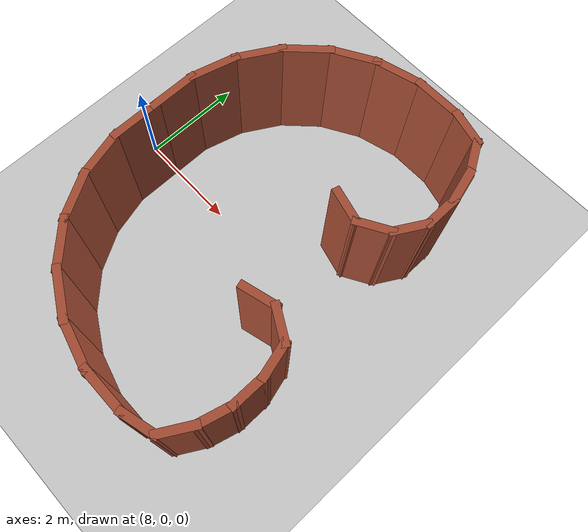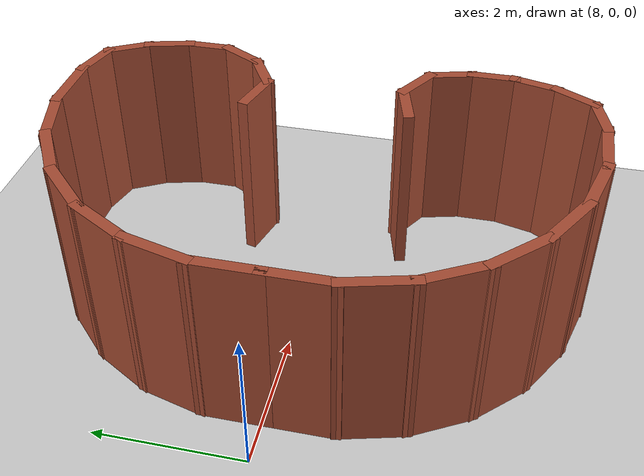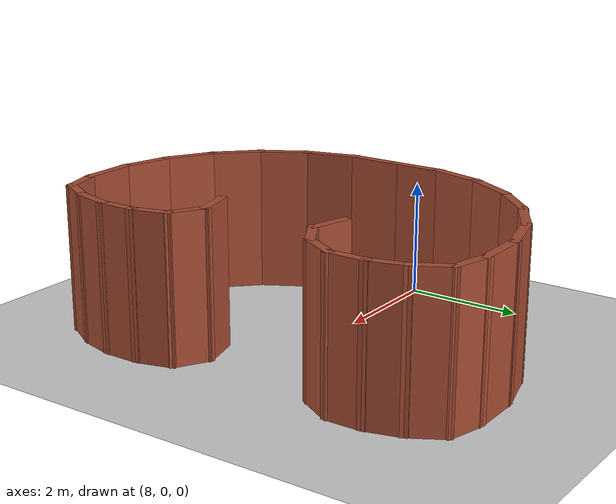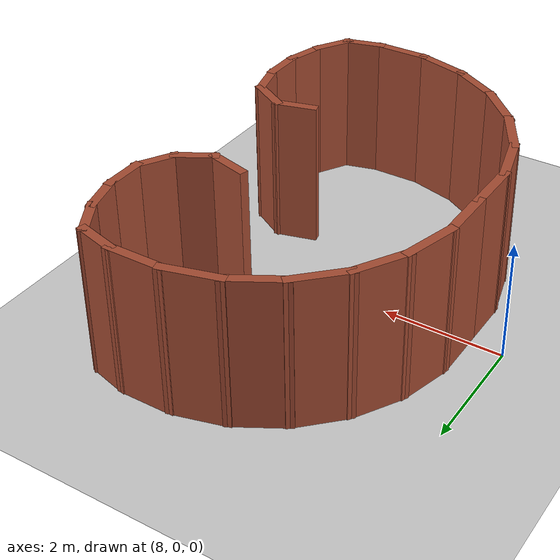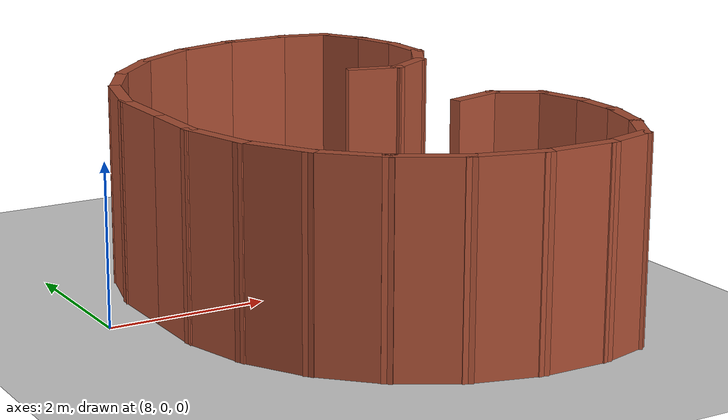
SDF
<sdf version="1.6">
 <world name="default">
  <light name="sun" type="directional">
   <pose>0 0 10 0 -0 0</pose>
   <diffuse>0.8 0.8 0.8 1</diffuse>
   <specular>0.2 0.2 0.2 1</specular>
   <attenuation>
    <range>1000</range>
    <constant>0.9</constant>
    <linear>0.01</linear>
    <quadratic>0.001</quadratic>
   </attenuation>
   <direction>-0.5 0.1 -0.9</direction>
  </light>
  <model name="ground_plane">
   <static>1</static>
   <link name="link">
    <collision name="collision">
     <geometry><plane><normal>0 0 1</normal><size>100 100</size></plane></geometry>
     <surface><friction><ode><mu>100</mu><mu2>50</mu2></ode></friction></surface>
    </collision>
    <visual name="visual">
     <cast_shadows>0</cast_shadows>
     <geometry><plane><normal>0 0 1</normal><size>100 100</size></plane></geometry>
     <material>
      <script><uri>file://media/materials/scripts/gazebo.material</uri><name>Gazebo/Grey</name></script>
     </material>
    </visual>
   </link>
  </model>
  <gravity>0 0 -9.8</gravity>
  <magnetic_field>6e-06 2.3e-05 -4.2e-05</magnetic_field>
  <atmosphere type="adiabatic"/>
  <physics name="default_physics" default="0" type="ode">
   <max_step_size>0.001</max_step_size>
   <real_time_factor>1</real_time_factor>
   <real_time_update_rate>1000</real_time_update_rate>
  </physics>
  <scene><ambient>0.4 0.4 0.4 1</ambient><background>0.7 0.7 0.7 1</background><shadows>1</shadows></scene>
  <audio><device>default</device></audio>
  <spherical_coordinates>
   <surface_model>EARTH_WGS84</surface_model>
   <latitude_deg>0</latitude_deg>
   <longitude_deg>0</longitude_deg>
   <elevation>0</elevation>
   <heading_deg>0</heading_deg>
  </spherical_coordinates>
  <model name="severe_c_shape">
   <pose>10.9746 -0.081468 0 0 0 -1.56992</pose>
   <link name="Wall_10">
    <collision name="Wall_10_Collision">
     <geometry><box><size>0.75 0.15 2.5</size></box></geometry>
     <pose>0 0 1.25 0 -0 0</pose>
    </collision>
    <visual name="Wall_10_Visual">
     <pose>0 0 1.25 0 -0 0</pose>
     <geometry><box><size>0.75 0.15 2.5</size></box></geometry>
     <material>
      <script><uri>file://media/materials/scripts/gazebo.material</uri><name>Gazebo/Bricks</name></script>
      <ambient>1 1 1 1</ambient>
     </material>
     <meta><layer>0</layer></meta>
    </visual>
    <pose>3.2381 2.03343 0 0 -0 2.61799</pose>
   </link>
   <link name="Wall_11">
    <collision name="Wall_11_Collision">
     <geometry><box><size>0.75 0.15 2.5</size></box></geometry>
     <pose>0 0 1.25 0 -0 0</pose>
    </collision>
    <visual name="Wall_11_Visual">
     <pose>0 0 1.25 0 -0 0</pose>
     <geometry><box><size>0.75 0.15 2.5</size></box></geometry>
     <material>
      <script><uri>file://media/materials/scripts/gazebo.material</uri><name>Gazebo/Bricks</name></script>
      <ambient>1 1 1 1</ambient>
     </material>
     <meta><layer>0</layer></meta>
    </visual>
    <pose>2.68851 2.26108 0 0 -0 2.87979</pose>
   </link>
   <link name="Wall_12">
    <collision name="Wall_12_Collision">
     <geometry><box><size>0.75 0.15 2.5</size></box></geometry>
     <pose>0 0 1.25 0 -0 0</pose>
    </collision>
    <visual name="Wall_12_Visual">
     <pose>0 0 1.25 0 -0 0</pose>
     <geometry><box><size>0.75 0.15 2.5</size></box></geometry>
     <material>
      <script><uri>file://media/materials/scripts/gazebo.material</uri><name>Gazebo/Bricks</name></script>
      <ambient>1 1 1 1</ambient>
     </material>
     <meta><layer>0</layer></meta>
    </visual>
    <pose>2.09873 2.33872 0 0 -0 3.14159</pose>
   </link>
   <link name="Wall_13">
    <collision name="Wall_13_Collision">
     <geometry><box><size>0.75 0.15 2.5</size></box></geometry>
     <pose>0 0 1.25 0 -0 0</pose>
    </collision>
    <visual name="Wall_13_Visual">
     <pose>0 0 1.25 0 -0 0</pose>
     <geometry><box><size>0.75 0.15 2.5</size></box></geometry>
     <material>
      <script><uri>file://media/materials/scripts/gazebo.material</uri><name>Gazebo/Bricks</name></script>
      <ambient>1 1 1 1</ambient>
     </material>
     <meta><layer>0</layer></meta>
    </visual>
    <pose>1.50896 2.26108 0 0 -0 -2.87979</pose>
   </link>
   <link name="Wall_14">
    <collision name="Wall_14_Collision">
     <geometry><box><size>0.75 0.15 2.5</size></box></geometry>
     <pose>0 0 1.25 0 -0 0</pose>
    </collision>
    <visual name="Wall_14_Visual">
     <pose>0 0 1.25 0 -0 0</pose>
     <geometry><box><size>0.75 0.15 2.5</size></box></geometry>
     <material>
      <script><uri>file://media/materials/scripts/gazebo.material</uri><name>Gazebo/Bricks</name></script>
      <ambient>1 1 1 1</ambient>
     </material>
     <meta><layer>0</layer></meta>
    </visual>
    <pose>1.06918 1.92362 0 0 -0 -2.0944</pose>
   </link>
   <link name="Wall_15">
    <collision name="Wall_15_Collision">
     <geometry><box><size>0.75 0.15 2.5</size></box></geometry>
     <pose>0 0 1.25 0 -0 0</pose>
    </collision>
    <visual name="Wall_15_Visual">
     <pose>0 0 1.25 0 -0 0</pose>
     <geometry><box><size>0.75 0.15 2.5</size></box></geometry>
     <material>
      <script><uri>file://media/materials/scripts/gazebo.material</uri><name>Gazebo/Bricks</name></script>
      <ambient>1 1 1 1</ambient>
     </material>
     <meta><layer>0</layer></meta>
    </visual>
    <pose>0.996824 1.37404 0 0 -0 -1.309</pose>
   </link>
   <link name="Wall_17">
    <collision name="Wall_17_Collision">
     <geometry><box><size>1 0.15 2.5</size></box></geometry>
     <pose>0 0 1.25 0 -0 0</pose>
    </collision>
    <visual name="Wall_17_Visual">
     <pose>0 0 1.25 0 -0 0</pose>
     <geometry><box><size>1 0.15 2.5</size></box></geometry>
     <material>
      <script><uri>file://media/materials/scripts/gazebo.material</uri><name>Gazebo/Bricks</name></script>
      <ambient>1 1 1 1</ambient>
     </material>
     <meta><layer>0</layer></meta>
    </visual>
    <pose>-0.425 -2.34932 0 0 -0 3.14159</pose>
   </link>
   <link name="Wall_2">
    <collision name="Wall_2_Collision">
     <geometry><box><size>1 0.15 2.5</size></box></geometry>
     <pose>0 0 1.25 0 -0 0</pose>
    </collision>
    <visual name="Wall_2_Visual">
     <pose>0 0 1.25 0 -0 0</pose>
     <geometry><box><size>1 0.15 2.5</size></box></geometry>
     <material>
      <script><uri>file://media/materials/scripts/gazebo.material</uri><name>Gazebo/Bricks</name></script>
      <ambient>1 1 1 1</ambient>
     </material>
     <meta><layer>0</layer></meta>
    </visual>
    <pose>0.425 -2.34932 0 0 -0 0</pose>
   </link>
   <link name="Wall_26">
    <collision name="Wall_26_Collision">
     <geometry><box><size>1 0.15 2.5</size></box></geometry>
     <pose>0 0 1.25 0 -0 0</pose>
    </collision>
    <visual name="Wall_26_Visual">
     <pose>0 0 1.25 0 -0 0</pose>
     <geometry><box><size>1 0.15 2.5</size></box></geometry>
     <material>
      <script><uri>file://media/materials/scripts/gazebo.material</uri><name>Gazebo/Bricks</name></script>
      <ambient>1 1 1 1</ambient>
     </material>
     <meta><layer>0</layer></meta>
    </visual>
    <pose>-1.26052 -2.23932 0 0 -0 2.87979</pose>
   </link>
   <link name="Wall_27">
    <collision name="Wall_27_Collision">
     <geometry><box><size>1 0.15 2.5</size></box></geometry>
     <pose>0 0 1.25 0 -0 0</pose>
    </collision>
    <visual name="Wall_27_Visual">
     <pose>0 0 1.25 0 -0 0</pose>
     <geometry><box><size>1 0.15 2.5</size></box></geometry>
     <material>
      <script><uri>file://media/materials/scripts/gazebo.material</uri><name>Gazebo/Bricks</name></script>
      <ambient>1 1 1 1</ambient>
     </material>
     <meta><layer>0</layer></meta>
    </visual>
    <pose>-2.0391 -1.91682 0 0 -0 2.61799</pose>
   </link>
   <link name="Wall_28">
    <collision name="Wall_28_Collision">
     <geometry><box><size>1 0.15 2.5</size></box></geometry>
     <pose>0 0 1.25 0 -0 0</pose>
    </collision>
    <visual name="Wall_28_Visual">
     <pose>0 0 1.25 0 -0 0</pose>
     <geometry><box><size>1 0.15 2.5</size></box></geometry>
     <material>
      <script><uri>file://media/materials/scripts/gazebo.material</uri><name>Gazebo/Bricks</name></script>
      <ambient>1 1 1 1</ambient>
     </material>
     <meta><layer>0</layer></meta>
    </visual>
    <pose>-2.70768 -1.4038 0 0 -0 2.35619</pose>
   </link>
   <link name="Wall_29">
    <collision name="Wall_29_Collision">
     <geometry><box><size>1 0.15 2.5</size></box></geometry>
     <pose>0 0 1.25 0 -0 0</pose>
    </collision>
    <visual name="Wall_29_Visual">
     <pose>0 0 1.25 0 -0 0</pose>
     <geometry><box><size>1 0.15 2.5</size></box></geometry>
     <material>
      <script><uri>file://media/materials/scripts/gazebo.material</uri><name>Gazebo/Bricks</name></script>
      <ambient>1 1 1 1</ambient>
     </material>
     <meta><layer>0</layer></meta>
    </visual>
    <pose>-3.2207 -0.735222 0 0 -0 2.0944</pose>
   </link>
   <link name="Wall_3">
    <collision name="Wall_3_Collision">
     <geometry><box><size>1 0.15 2.5</size></box></geometry>
     <pose>0 0 1.25 0 -0 0</pose>
    </collision>
    <visual name="Wall_3_Visual">
     <pose>0 0 1.25 0 -0 0</pose>
     <geometry><box><size>1 0.15 2.5</size></box></geometry>
     <material>
      <script><uri>file://media/materials/scripts/gazebo.material</uri><name>Gazebo/Bricks</name></script>
      <ambient>1 1 1 1</ambient>
     </material>
     <meta><layer>0</layer></meta>
    </visual>
    <pose>1.26052 -2.23932 0 0 -0 0.261799</pose>
   </link>
   <link name="Wall_30">
    <collision name="Wall_30_Collision">
     <geometry><box><size>1 0.15 2.5</size></box></geometry>
     <pose>0 0 1.25 0 -0 0</pose>
    </collision>
    <visual name="Wall_30_Visual">
     <pose>0 0 1.25 0 -0 0</pose>
     <geometry><box><size>1 0.15 2.5</size></box></geometry>
     <material>
      <script><uri>file://media/materials/scripts/gazebo.material</uri><name>Gazebo/Bricks</name></script>
      <ambient>1 1 1 1</ambient>
     </material>
     <meta><layer>0</layer></meta>
    </visual>
    <pose>-3.5432 0.043358 0 0 -0 1.8326</pose>
   </link>
   <link name="Wall_31">
    <collision name="Wall_31_Collision">
     <geometry><box><size>1 0.15 2.5</size></box></geometry>
     <pose>0 0 1.25 0 -0 0</pose>
    </collision>
    <visual name="Wall_31_Visual">
     <pose>0 0 1.25 0 -0 0</pose>
     <geometry><box><size>1 0.15 2.5</size></box></geometry>
     <material>
      <script><uri>file://media/materials/scripts/gazebo.material</uri><name>Gazebo/Bricks</name></script>
      <ambient>1 1 1 1</ambient>
     </material>
     <meta><layer>0</layer></meta>
    </visual>
    <pose>-3.6532 0.878876 0 0 -0 1.5708</pose>
   </link>
   <link name="Wall_32">
    <collision name="Wall_32_Collision">
     <geometry><box><size>0.75 0.15 2.5</size></box></geometry>
     <pose>0 0 1.25 0 -0 0</pose>
    </collision>
    <visual name="Wall_32_Visual">
     <pose>0 0 1.25 0 -0 0</pose>
     <geometry><box><size>0.75 0.15 2.5</size></box></geometry>
     <material>
      <script><uri>file://media/materials/scripts/gazebo.material</uri><name>Gazebo/Bricks</name></script>
      <ambient>1 1 1 1</ambient>
     </material>
     <meta><layer>0</layer></meta>
    </visual>
    <pose>-3.57555 1.59365 0 0 -0 1.309</pose>
   </link>
   <link name="Wall_33">
    <collision name="Wall_33_Collision">
     <geometry><box><size>0.75 0.15 2.5</size></box></geometry>
     <pose>0 0 1.25 0 -0 0</pose>
    </collision>
    <visual name="Wall_33_Visual">
     <pose>0 0 1.25 0 -0 0</pose>
     <geometry><box><size>0.75 0.15 2.5</size></box></geometry>
     <material>
      <script><uri>file://media/materials/scripts/gazebo.material</uri><name>Gazebo/Bricks</name></script>
      <ambient>1 1 1 1</ambient>
     </material>
     <meta><layer>0</layer></meta>
    </visual>
    <pose>-3.2381 2.03343 0 0 -0 0.523599</pose>
   </link>
   <link name="Wall_34">
    <collision name="Wall_34_Collision">
     <geometry><box><size>0.75 0.15 2.5</size></box></geometry>
     <pose>0 0 1.25 0 -0 0</pose>
    </collision>
    <visual name="Wall_34_Visual">
     <pose>0 0 1.25 0 -0 0</pose>
     <geometry><box><size>0.75 0.15 2.5</size></box></geometry>
     <material>
      <script><uri>file://media/materials/scripts/gazebo.material</uri><name>Gazebo/Bricks</name></script>
      <ambient>1 1 1 1</ambient>
     </material>
     <meta><layer>0</layer></meta>
    </visual>
    <pose>-2.68851 2.26108 0 0 -0 0.261799</pose>
   </link>
   <link name="Wall_35">
    <collision name="Wall_35_Collision">
     <geometry><box><size>0.75 0.15 2.5</size></box></geometry>
     <pose>0 0 1.25 0 -0 0</pose>
    </collision>
    <visual name="Wall_35_Visual">
     <pose>0 0 1.25 0 -0 0</pose>
     <geometry><box><size>0.75 0.15 2.5</size></box></geometry>
     <material>
      <script><uri>file://media/materials/scripts/gazebo.material</uri><name>Gazebo/Bricks</name></script>
      <ambient>1 1 1 1</ambient>
     </material>
     <meta><layer>0</layer></meta>
    </visual>
    <pose>-2.09873 2.33872 0 0 -0 0</pose>
   </link>
   <link name="Wall_36">
    <collision name="Wall_36_Collision">
     <geometry><box><size>0.75 0.15 2.5</size></box></geometry>
     <pose>0 0 1.25 0 -0 0</pose>
    </collision>
    <visual name="Wall_36_Visual">
     <pose>0 0 1.25 0 -0 0</pose>
     <geometry><box><size>0.75 0.15 2.5</size></box></geometry>
     <material>
      <script><uri>file://media/materials/scripts/gazebo.material</uri><name>Gazebo/Bricks</name></script>
      <ambient>1 1 1 1</ambient>
     </material>
     <meta><layer>0</layer></meta>
    </visual>
    <pose>-1.53893 2.18872 0 0 -0 -0.523599</pose>
   </link>
   <link name="Wall_37">
    <collision name="Wall_37_Collision">
     <geometry><box><size>0.75 0.15 2.5</size></box></geometry>
     <pose>0 0 1.25 0 -0 0</pose>
    </collision>
    <visual name="Wall_37_Visual">
     <pose>0 0 1.25 0 -0 0</pose>
     <geometry><box><size>0.75 0.15 2.5</size></box></geometry>
     <material>
      <script><uri>file://media/materials/scripts/gazebo.material</uri><name>Gazebo/Bricks</name></script>
      <ambient>1 1 1 1</ambient>
     </material>
     <meta><layer>0</layer></meta>
    </visual>
    <pose>-1.12912 1.77892 0 0 -0 -1.0472</pose>
   </link>
   <link name="Wall_38">
    <collision name="Wall_38_Collision">
     <geometry><box><size>0.75 0.15 2.5</size></box></geometry>
     <pose>0 0 1.25 0 -0 0</pose>
    </collision>
    <visual name="Wall_38_Visual">
     <pose>0 0 1.25 0 -0 0</pose>
     <geometry><box><size>0.75 0.15 2.5</size></box></geometry>
     <material>
      <script><uri>file://media/materials/scripts/gazebo.material</uri><name>Gazebo/Bricks</name></script>
      <ambient>1 1 1 1</ambient>
     </material>
     <meta><layer>0</layer></meta>
    </visual>
    <pose>-1.05676 1.22933 0 0 -0 -1.8326</pose>
   </link>
   <link name="Wall_4">
    <collision name="Wall_4_Collision">
     <geometry><box><size>1 0.15 2.5</size></box></geometry>
     <pose>0 0 1.25 0 -0 0</pose>
    </collision>
    <visual name="Wall_4_Visual">
     <pose>0 0 1.25 0 -0 0</pose>
     <geometry><box><size>1 0.15 2.5</size></box></geometry>
     <material>
      <script><uri>file://media/materials/scripts/gazebo.material</uri><name>Gazebo/Bricks</name></script>
      <ambient>1 1 1 1</ambient>
     </material>
     <meta><layer>0</layer></meta>
    </visual>
    <pose>2.0391 -1.91682 0 0 -0 0.523599</pose>
   </link>
   <link name="Wall_5">
    <collision name="Wall_5_Collision">
     <geometry><box><size>1 0.15 2.5</size></box></geometry>
     <pose>0 0 1.25 0 -0 0</pose>
    </collision>
    <visual name="Wall_5_Visual">
     <pose>0 0 1.25 0 -0 0</pose>
     <geometry><box><size>1 0.15 2.5</size></box></geometry>
     <material>
      <script><uri>file://media/materials/scripts/gazebo.material</uri><name>Gazebo/Bricks</name></script>
      <ambient>1 1 1 1</ambient>
     </material>
     <meta><layer>0</layer></meta>
    </visual>
    <pose>2.70768 -1.4038 0 0 -0 0.785398</pose>
   </link>
   <link name="Wall_6">
    <collision name="Wall_6_Collision">
     <geometry><box><size>1 0.15 2.5</size></box></geometry>
     <pose>0 0 1.25 0 -0 0</pose>
    </collision>
    <visual name="Wall_6_Visual">
     <pose>0 0 1.25 0 -0 0</pose>
     <geometry><box><size>1 0.15 2.5</size></box></geometry>
     <material>
      <script><uri>file://media/materials/scripts/gazebo.material</uri><name>Gazebo/Bricks</name></script>
      <ambient>1 1 1 1</ambient>
     </material>
     <meta><layer>0</layer></meta>
    </visual>
    <pose>3.2207 -0.735222 0 0 -0 1.0472</pose>
   </link>
   <link name="Wall_7">
    <collision name="Wall_7_Collision">
     <geometry><box><size>1 0.15 2.5</size></box></geometry>
     <pose>0 0 1.25 0 -0 0</pose>
    </collision>
    <visual name="Wall_7_Visual">
     <pose>0 0 1.25 0 -0 0</pose>
     <geometry><box><size>1 0.15 2.5</size></box></geometry>
     <material>
      <script><uri>file://media/materials/scripts/gazebo.material</uri><name>Gazebo/Bricks</name></script>
      <ambient>1 1 1 1</ambient>
     </material>
     <meta><layer>0</layer></meta>
    </visual>
    <pose>3.5432 0.043358 0 0 -0 1.309</pose>
   </link>
   <link name="Wall_8">
    <collision name="Wall_8_Collision">
     <geometry><box><size>1 0.15 2.5</size></box></geometry>
     <pose>0 0 1.25 0 -0 0</pose>
    </collision>
    <visual name="Wall_8_Visual">
     <pose>0 0 1.25 0 -0 0</pose>
     <geometry><box><size>1 0.15 2.5</size></box></geometry>
     <material>
      <script><uri>file://media/materials/scripts/gazebo.material</uri><name>Gazebo/Bricks</name></script>
      <ambient>1 1 1 1</ambient>
     </material>
     <meta><layer>0</layer></meta>
    </visual>
    <pose>3.6532 0.878876 0 0 -0 1.5708</pose>
   </link>
   <link name="Wall_9">
    <collision name="Wall_9_Collision">
     <geometry><box><size>0.75 0.15 2.5</size></box></geometry>
     <pose>0 0 1.25 0 -0 0</pose>
    </collision>
    <visual name="Wall_9_Visual">
     <pose>0 0 1.25 0 -0 0</pose>
     <geometry><box><size>0.75 0.15 2.5</size></box></geometry>
     <material>
      <script><uri>file://media/materials/scripts/gazebo.material</uri><name>Gazebo/Bricks</name></script>
      <ambient>1 1 1 1</ambient>
     </material>
     <meta><layer>0</layer></meta>
    </visual>
    <pose>3.57555 1.59365 0 0 -0 1.8326</pose>
   </link>
   <static>1</static>
  </model>
 </world>
</sdf>
